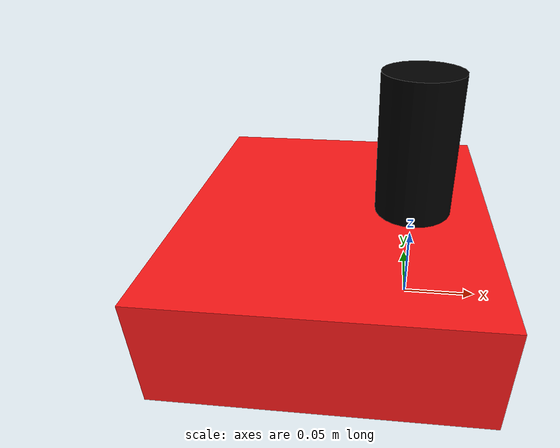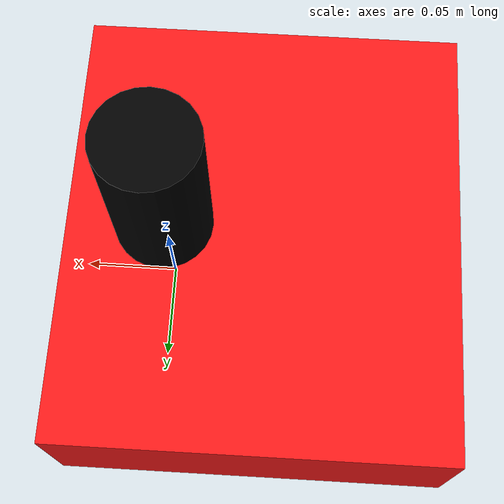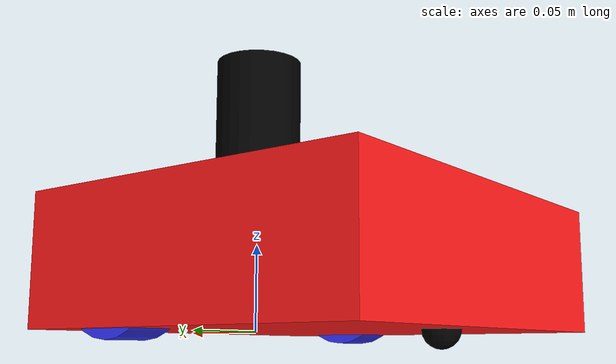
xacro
<?xml version="1.0"?>
<robot xmlns:xacro="http://www.ros.org/wiki/xacro" >

    <xacro:include filename="inertial_macros.xacro"/>

	<xacro:property name="wheel_radius" value="0.0325"/>
	<xacro:property name="wheel_length" value="0.025"/>

    <material name="white">
        <color rgba="1 1 1 1" />
    </material>

    <material name="red">
        <color rgba="1 0.1 0.1 1"/>
    </material>

    <material name="blue">
        <color rgba="0.2 0.2 1 1"/>
    </material>

    <material name="black">
        <color rgba="0 0 0 1"/>
    </material>

	<link name="odom"/>

    <!-- BASE LINK -->

    <link name="base_link">
		<visual>
            <origin xyz="-0.05 0 0.035"/>
            <geometry>
                <box size="0.2 0.23 0.07"/>
            </geometry>
            <material name="red"/>
        </visual>
        <collision>
            <origin xyz="-0.05 0 0.035"/>
            <geometry>
                <box size="0.2 0.23 0.07"/>
            </geometry>
        </collision>
        <xacro:inertial_box mass="0.5" x="0.3" y="0.3" z="0.15">
            <origin xyz="-0.05 0 0.035" rpy="0 0 0"/>
        </xacro:inertial_box>
    </link>

	<joint name="base_link_joint" type="fixed">
		<parent link="odom"/>
		<child link="base_link"/>
		<origin xyz="0 0 0" rpy="0 0 0"/>
	</joint>

	<joint name="left_wheel_joint" type="continuous">
        <parent link="base_link"/>
        <child link="left_wheel"/>
        <origin xyz="0 0.095 0.027" rpy="-${pi/2} 0 0" />
        <axis xyz="0 0 1"/>
    </joint>

    <link name="left_wheel">
        <visual>
            <geometry>
                <cylinder radius="${wheel_radius}" length="${wheel_length}"/>
            </geometry>
            <material name="blue"/>
        </visual>
        <collision>
            <geometry>
                <cylinder radius="${wheel_radius}" length="${wheel_length}"/>
            </geometry>
        </collision>
        <xacro:inertial_cylinder mass="0.1" length="${wheel_length}" radius="${wheel_radius}">
            <origin xyz="0 0 0" rpy="0 0 0"/>
        </xacro:inertial_cylinder>
    </link>

	<joint name="right_wheel_joint" type="continuous">
        <parent link="base_link"/>
        <child link="right_wheel"/>
        <origin xyz="0 -0.095 0.027" rpy="${pi/2} 0 0" />
        <axis xyz="0 0 -1"/>
    </joint>

    <link name="right_wheel">
        <visual>
            <geometry>
                <cylinder radius="${wheel_radius}" length="${wheel_length}"/>
            </geometry>
            <material name="blue"/>
        </visual>
        <collision>
            <geometry>
                <cylinder radius="${wheel_radius}" length="${wheel_length}"/>
            </geometry>
        </collision>
        <xacro:inertial_cylinder mass="0.1" length="${wheel_length}" radius="${wheel_radius}">
            <origin xyz="0 0 0" rpy="0 0 0"/>
        </xacro:inertial_cylinder>
    </link>

	<joint name="base_link_wheel_joint" type="fixed">
        <parent link="base_link"/>
        <child link="caster_wheel"/>
        <origin xyz="-0.12 0 0"/>
    </joint>

    <link name="caster_wheel">
        <visual>
            <geometry>
                <sphere radius="0.01"/>
            </geometry>
            <material name="black"/>
        </visual>
        <collision>
            <geometry>
                <sphere radius="0.01"/>
            </geometry>
        </collision>
        <xacro:inertial_sphere mass="0.1" radius="0.01">
            <origin xyz="0 0 0" rpy="0 0 0"/>
        </xacro:inertial_sphere>
    </link>

	<joint name="base_link_lidar_joint" type="fixed">
        <parent link="base_link"/>
        <child link="lidar"/>
        <origin xyz="0 0 0.07"/>
    </joint>

    <link name="lidar">
        <visual>
			<origin xyz="0 0 0.045"/>
            <geometry>
                <cylinder radius="0.025" length="0.09"/>
            </geometry>
            <material name="black"/>
        </visual>
        <collision>
			<origin xyz="0 0 0.045"/>
            <geometry>
                <cylinder radius="0.025" length="0.09"/>
            </geometry>
        </collision>
        <xacro:inertial_cylinder mass="0.1" length="0.09" radius="0.025">
            <origin xyz="0 0 0.045" rpy="0 0 0"/>
        </xacro:inertial_cylinder>
    </link>

</robot>
